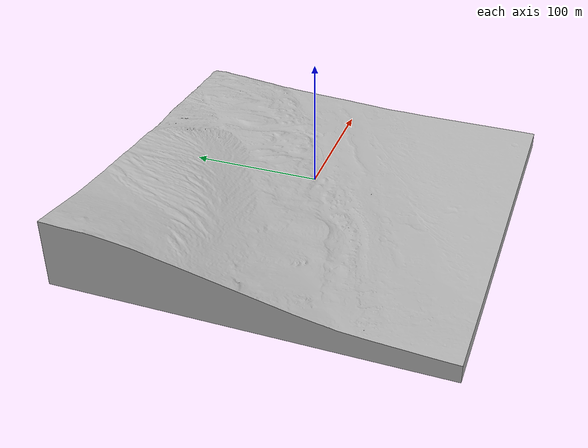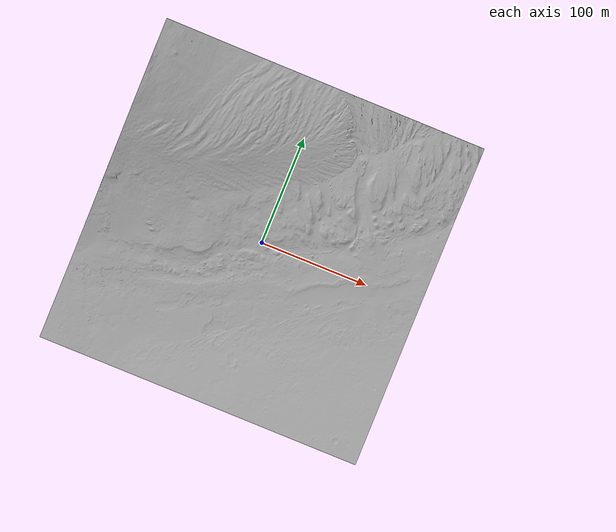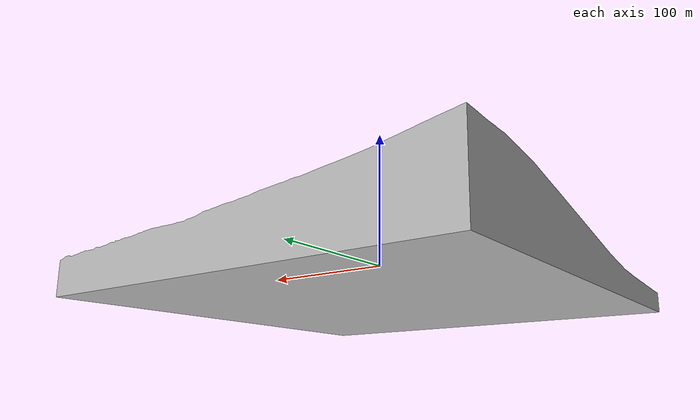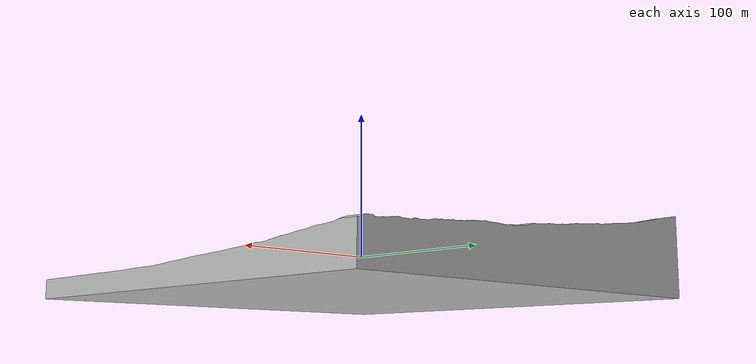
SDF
<?xml version="1.0" ?>
<sdf version="1.5">
  <model name="curiosity_path">
      <static>true</static>
      <link name='link'>
       <collision name="collision">
        <geometry>
            <mesh>
              <uri>model://curiosity_path/meshes/curiosity_path25k.stl</uri>
              <scale>1 1 1</scale>
            </mesh>
        </geometry>
        <surface>
          <contact>
             <collide_bitmask>0xffff</collide_bitmask>
          </contact>
          <friction>
            <ode>
              <mu>100</mu>
              <mu2>50</mu2>
            </ode>
          </friction>
        </surface>
      </collision>
        <visual name='visual'>
          <geometry>
            <mesh>
              <uri>model://curiosity_path/meshes/curiosity_path25k.dae</uri>
              <scale>1 1 1</scale>
            </mesh>
          </geometry>
        </visual>
      </link>
  </model>
</sdf>
